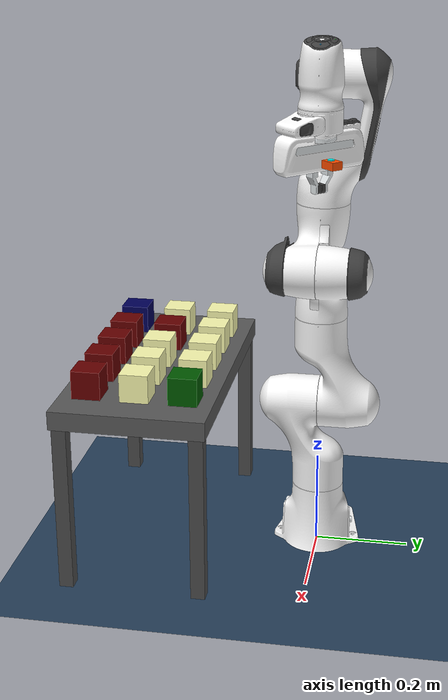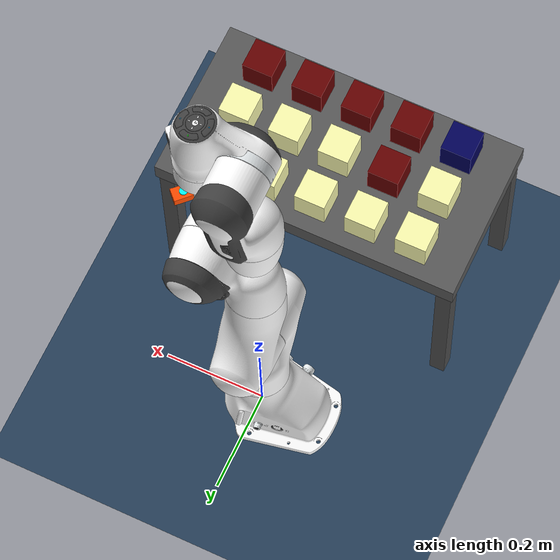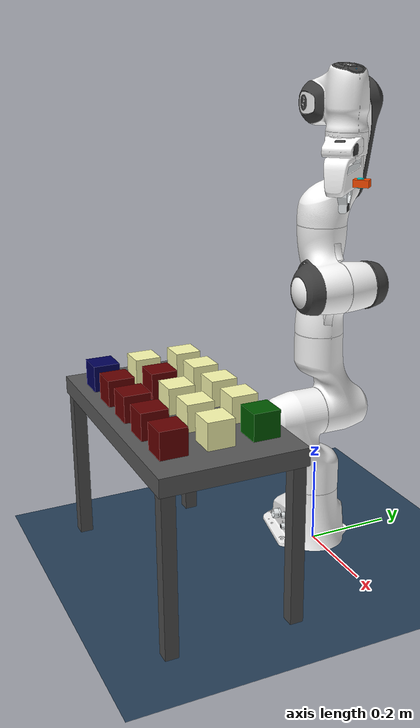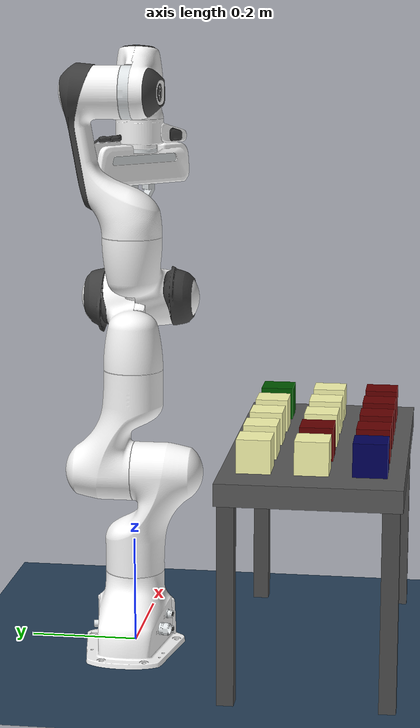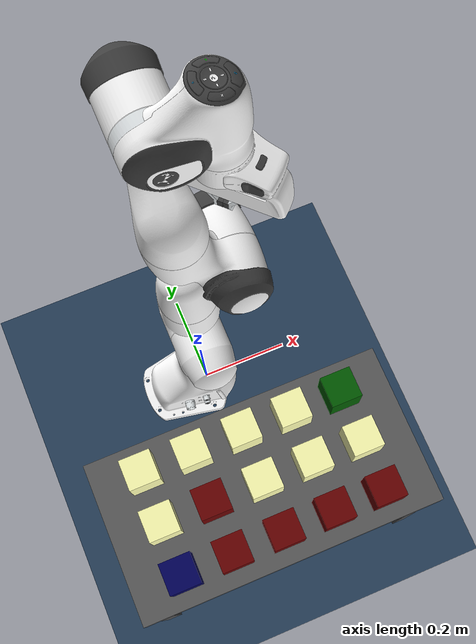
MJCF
<mujoco model="panda scene">

  <size nconmax="500" njmax="2000"/>
  <include file="panda.xml"/>

  <option timestep="1e-3"
    cone="elliptic"
    impratio="5"
    tolerance="1e-6"
    iterations="30"
    ls_iterations="10"
    noslip_tolerance="1e-6">
  </option>

  <statistic center="0.3 0 0.4" extent="1"/>

  <visual>
    <headlight diffuse="0.6 0.6 0.6" ambient="0.3 0.3 0.3" specular="0 0 0"/>
    <rgba haze="0.15 0.25 0.35 1"/>
    <global azimuth="120" elevation="-20"/>
  </visual>

  <option noslip_iterations="3">
    <flag multiccd="enable"  gravity="enable"/>
  </option>

  <asset>
    <texture type="skybox" builtin="gradient" rgb1="0.3 0.5 0.7" rgb2="0 0 0" width="512" height="3072"/>
    <texture type="2d" name="groundplane" builtin="checker" mark="edge" rgb1="0.2 0.3 0.4" rgb2="0.1 0.2 0.3"
      markrgb="0.8 0.8 0.8" width="300" height="300"/>
    <material name="groundplane" texture="groundplane" texuniform="true" texrepeat="5 5" reflectance="0.2"/>

  </asset>

  <worldbody>
    <light pos="0 0 1.5" dir="0 0 -1" directional="true"/>
    <geom name="floor" type="plane" size="0 0 0.05" material="groundplane"/>
    <camera name="front_cam" pos="-0.65 -1.3 1.0762"
            xyaxes="0.866 -0.5 0 0.211 0.366 0.906" fovy="45" mode="fixed"/>
    <camera name="topdown_cam" pos="0 -0.345 1.05"
            xyaxes="1 0 0 0 1 0" fovy="45" mode="fixed"/>

    <!-- First Row -->
      <body name="obstacle_soft1" pos="-0.2 -0.25 0.43" quat="0 0 0 1">
        <joint name="obstacle_soft1_joint" type="free"/>
        <geom name="obstacle_soft1_geom" type="box" size="0.03 0.03 0.03" rgba="1.0 1.0 0.698 1"/>
      </body>

      <body name="obstacle_soft2" pos="-0.1 -0.25 0.43" quat="0 0 0 1">
        <joint name="obstacle_soft2_joint" type="free"/>
        <geom name="obstacle_soft2_geom" type="box" size="0.03 0.03 0.03" rgba="1.0 1.0 0.698 1"/>
      </body>

      <body name="obstacle_soft3" pos="0.0 -0.25 0.43" quat="0 0 0 1">
        <joint name="obstacle_soft3_joint" type="free"/>
        <geom name="obstacle_soft3_geom" type="box" size="0.03 0.03 0.03" rgba="1.0 1.0 0.698 1"/>
      </body>

      <body name="obstacle_soft4" pos="0.1 -0.25 0.43" quat="0 0 0 1">
        <joint name="obstacle_soft4_joint" type="free"/>
        <geom name="obstacle_soft4_geom" type="box" size="0.03 0.03 0.03" rgba="1.0 1.0 0.698 1"/>
      </body>

      <body name="object3" pos="0.2 -0.25 0.43" quat="0 0 0 1">
        <joint name="object3_joint" type="free"/>
        <geom name="object3_geom" type="box" size="0.03 0.03 0.03" rgba="0.0 0.35 0.0 1" solimp="0.015 1 0.02" solref="0.005 1" condim="6" friction="2.8 1.2 0.1"/>
      </body>

    <!-- Second Row -->
      <body name="obstacle_soft5" pos="-0.2 -0.35 0.43" quat="0 0 0 1">
        <joint name="obstacle_soft5_joint" type="free"/>
        <geom name="obstacle_soft5_geom" type="box" size="0.03 0.03 0.03" rgba="1.0 1.0 0.698 1"/>
      </body>

      <body name="obstacle_hard6" pos="-0.1 -0.35 0.43" quat="0 0 0 1">
        <joint name="obstacle_hard6_joint" type="free"/>
        <geom name="obstacle_hard6_geom" type="box" size="0.03 0.03 0.03" rgba="0.4 0.0 0.0 1"/>
      </body>

      <body name="obstacle_soft7" pos="0.0 -0.35 0.43" quat="0 0 0 1">
        <joint name="obstacle_soft7_joint" type="free"/>
        <geom name="obstacle_soft7_geom" type="box" size="0.03 0.03 0.03" rgba="1.0 1.0 0.698 1"/>
      </body>

      <body name="obstacle_soft8" pos="0.1 -0.35 0.43" quat="0 0 0 1">
        <joint name="obstacle_soft8_joint" type="free"/>
        <geom name="obstacle_soft8_geom" type="box" size="0.03 0.03 0.03" rgba="1.0 1.0 0.698 1"/>
      </body>

      <body name="obstacle_soft9" pos="0.2 -0.35 0.43" quat="0 0 0 1">
        <joint name="obstacle_soft9_joint" type="free"/>
        <geom name="obstacle_soft9_geom" type="box" size="0.03 0.03 0.03" rgba="1.0 1.0 0.698 1"/>
      </body>

    <!-- Third Row -->
      <body name="object1" pos="-0.2 -0.45 0.43" quat="0 0 0 1">
        <joint name="object1_joint" type="free"/>
        <geom name="object1_geom" type="box" size="0.03 0.03 0.03" rgba="0.0 0.0 0.35 1"/>
      </body>

      <body name="obstacle_hard10" pos="-0.1 -0.45 0.43" quat="0 0 0 1">
        <joint name="obstacle_hard10_joint" type="free"/>
        <geom name="obstacle_hard10_geom" type="box" size="0.03 0.03 0.03" rgba="0.4 0.0 0.0 1"/>
      </body>

      <body name="obstacle_hard11" pos="0.0 -0.45 0.43" quat="0 0 0 1">
        <joint name="obstacle_hard11_joint" type="free"/>
        <geom name="obstacle_hard11_geom" type="box" size="0.03 0.03 0.03" rgba="0.4 0.0 0.0 1"/>
      </body>

      <body name="obstacle_hard12" pos="0.1 -0.45 0.43" quat="0 0 0 1">
        <joint name="obstacle_hard12_joint" type="free"/>
        <geom name="obstacle_hard12_geom" type="box" size="0.03 0.03 0.03" rgba="0.4 0.0 0.0 1"/>
      </body>

      <body name="obstacle_hard13" pos="0.2 -0.45 0.43" quat="0 0 0 1">
        <joint name="obstacle_hard13_joint" type="free"/>
        <geom name="obstacle_hard13_geom" type="box" size="0.03 0.03 0.03" rgba="0.4 0.0 0.0 1"/>
      </body>

    <!-- simple table, now really on the ground -->
    <body name="simple_table" pos="0 -0.35 0" quat="0 0 0 1">
      <joint name="table_joint" type="free"/>

      <!-- tabletop -->
      <geom type="box" size="0.30 0.16 0.02" pos="0 0 0.38"
            rgba="0.35 0.35 0.35 1"/>

      <!-- legs -->
      <geom type="box" size="0.015 0.015 0.18" pos=" 0.28  0.14 0.18"
            rgba="0.3 0.3 0.3 1"/>
      <geom type="box" size="0.015 0.015 0.18" pos="-0.28  0.14 0.18"
            rgba="0.3 0.3 0.3 1"/>
      <geom type="box" size="0.015 0.015 0.18" pos=" 0.28 -0.14 0.18"
            rgba="0.3 0.3 0.3 1"/>
      <geom type="box" size="0.015 0.015 0.18" pos="-0.28 -0.14 0.18"
            rgba="0.3 0.3 0.3 1"/>

    </body>

  </worldbody>
</mujoco>

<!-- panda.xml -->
<mujoco model="panda">
  <size njmax="100"/>
  <compiler angle="radian" meshdir="assets" autolimits="true"/>

  <option integrator="implicitfast"/>

  <default>
    <default class="panda">
      <material specular="0.5" shininess="0.25"/>
      <joint armature="0.1" damping="1" axis="0 0 1" range="-2.8973 2.8973"/>
      <general dyntype="none" biastype="affine" ctrlrange="-2.8973 2.8973" forcerange="-87 87"/>
      <default class="finger">
        <joint axis="0 1 0" type="slide" range="0 0.04"/>
      </default>

      <default class="visual">
        <geom type="mesh" contype="0" conaffinity="0" group="2"/>
      </default>
      <default class="collision">
        <geom type="mesh" group="3"/>
        <default class="fingertip_pad_collision_1">
          <geom type="box" size="0.0085 0.004 0.0085" pos="0 0.0055 0.0445"/>
        </default>
        <default class="fingertip_pad_collision_2">
          <geom type="box" size="0.003 0.002 0.003" pos="0.0055 0.002 0.05"/>
        </default>
        <default class="fingertip_pad_collision_3">
          <geom type="box" size="0.003 0.002 0.003" pos="-0.0055 0.002 0.05"/>
        </default>
        <default class="fingertip_pad_collision_4">
          <geom type="box" size="0.003 0.002 0.0035" pos="0.0055 0.002 0.0395"/>
        </default>
        <default class="fingertip_pad_collision_5">
          <geom type="box" size="0.003 0.002 0.0035" pos="-0.0055 0.002 0.0395"/>
        </default>
      </default>
    </default>
  </default>

  <asset>
    <material class="panda" name="white" rgba="1 1 1 1"/>
    <material class="panda" name="off_white" rgba="0.901961 0.921569 0.929412 1"/>
    <material class="panda" name="black" rgba="0.25 0.25 0.25 1"/>
    <material class="panda" name="green" rgba="0 1 0 1"/>
    <material class="panda" name="light_blue" rgba="0.039216 0.541176 0.780392 1"/>

    <!-- Collision meshes -->
    <mesh name="link0_c" file="link0.stl"/>
    <mesh name="link1_c" file="link1.stl"/>
    <mesh name="link2_c" file="link2.stl"/>
    <mesh name="link3_c" file="link3.stl"/>
    <mesh name="link4_c" file="link4.stl"/>
    <mesh name="link5_c0" file="link5_collision_0.obj"/>
    <mesh name="link5_c1" file="link5_collision_1.obj"/>
    <mesh name="link5_c2" file="link5_collision_2.obj"/>
    <mesh name="link6_c" file="link6.stl"/>
    <mesh name="link7_c" file="link7.stl"/>
    <mesh name="hand_c" file="hand.stl"/>

    <!-- Visual meshes -->
    <mesh file="link0_0.obj"/>
    <mesh file="link0_1.obj"/>
    <mesh file="link0_2.obj"/>
    <mesh file="link0_3.obj"/>
    <mesh file="link0_4.obj"/>
    <mesh file="link0_5.obj"/>
    <mesh file="link0_7.obj"/>
    <mesh file="link0_8.obj"/>
    <mesh file="link0_9.obj"/>
    <mesh file="link0_10.obj"/>
    <mesh file="link0_11.obj"/>
    <mesh file="link1.obj"/>
    <mesh file="link2.obj"/>
    <mesh file="link3_0.obj"/>
    <mesh file="link3_1.obj"/>
    <mesh file="link3_2.obj"/>
    <mesh file="link3_3.obj"/>
    <mesh file="link4_0.obj"/>
    <mesh file="link4_1.obj"/>
    <mesh file="link4_2.obj"/>
    <mesh file="link4_3.obj"/>
    <mesh file="link5_0.obj"/>
    <mesh file="link5_1.obj"/>
    <mesh file="link5_2.obj"/>
    <mesh file="link6_0.obj"/>
    <mesh file="link6_1.obj"/>
    <mesh file="link6_2.obj"/>
    <mesh file="link6_3.obj"/>
    <mesh file="link6_4.obj"/>
    <mesh file="link6_5.obj"/>
    <mesh file="link6_6.obj"/>
    <mesh file="link6_7.obj"/>
    <mesh file="link6_8.obj"/>
    <mesh file="link6_9.obj"/>
    <mesh file="link6_10.obj"/>
    <mesh file="link6_11.obj"/>
    <mesh file="link6_12.obj"/>
    <mesh file="link6_13.obj"/>
    <mesh file="link6_14.obj"/>
    <mesh file="link6_15.obj"/>
    <mesh file="link6_16.obj"/>
    <mesh file="link7_0.obj"/>
    <mesh file="link7_1.obj"/>
    <mesh file="link7_2.obj"/>
    <mesh file="link7_3.obj"/>
    <mesh file="link7_4.obj"/>
    <mesh file="link7_5.obj"/>
    <mesh file="link7_6.obj"/>
    <mesh file="link7_7.obj"/>
    <mesh file="hand_0.obj"/>
    <mesh file="hand_1.obj"/>
    <mesh file="hand_2.obj"/>
    <mesh file="hand_3.obj"/>
    <mesh file="hand_4.obj"/>
    <mesh file="finger_0.obj"/>
    <mesh file="finger_1.obj"/>
  </asset>

  <worldbody>
    <light name="top" pos="0 0 2" mode="trackcom"/>
    <body name="link0" childclass="panda">
      <inertial mass="0.629769" pos="-0.041018 -0.00014 0.049974"
        fullinertia="0.00315 0.00388 0.004285 8.2904e-7 0.00015 8.2299e-6"/>
      <geom mesh="link0_0" material="off_white" class="visual"/>
      <geom mesh="link0_1" material="black" class="visual"/>
      <geom mesh="link0_2" material="off_white" class="visual"/>
      <geom mesh="link0_3" material="black" class="visual"/>
      <geom mesh="link0_4" material="off_white" class="visual"/>
      <geom mesh="link0_5" material="black" class="visual"/>
      <geom mesh="link0_7" material="white" class="visual"/>
      <geom mesh="link0_8" material="white" class="visual"/>
      <geom mesh="link0_9" material="black" class="visual"/>
      <geom mesh="link0_10" material="off_white" class="visual"/>
      <geom mesh="link0_11" material="white" class="visual"/>
      <geom mesh="link0_c" class="collision"/>
      <body name="link1" pos="0 0 0.333">
        <inertial mass="4.970684" pos="0.003875 0.002081 -0.04762"
          fullinertia="0.70337 0.70661 0.0091170 -0.00013900 0.0067720 0.019169"/>
        <joint name="joint1"/>
        <geom material="white" mesh="link1" class="visual"/>
        <geom mesh="link1_c" class="collision"/>
        <body name="link2" quat="1 -1 0 0">
          <inertial mass="0.646926" pos="-0.003141 -0.02872 0.003495"
            fullinertia="0.0079620 2.8110e-2 2.5995e-2 -3.925e-3 1.0254e-2 7.04e-4"/>
          <joint name="joint2" range="-1.7628 1.7628"/>
          <geom material="white" mesh="link2" class="visual"/>
          <geom mesh="link2_c" class="collision"/>
          <body name="link3" pos="0 -0.316 0" quat="1 1 0 0">
            <joint name="joint3"/>
            <inertial mass="3.228604" pos="2.7518e-2 3.9252e-2 -6.6502e-2"
              fullinertia="3.7242e-2 3.6155e-2 1.083e-2 -4.761e-3 -1.1396e-2 -1.2805e-2"/>
            <geom mesh="link3_0" material="white" class="visual"/>
            <geom mesh="link3_1" material="white" class="visual"/>
            <geom mesh="link3_2" material="white" class="visual"/>
            <geom mesh="link3_3" material="black" class="visual"/>
            <geom mesh="link3_c" class="collision"/>
            <body name="link4" pos="0.0825 0 0" quat="1 1 0 0">
              <inertial mass="3.587895" pos="-5.317e-2 1.04419e-1 2.7454e-2"
                fullinertia="2.5853e-2 1.9552e-2 2.8323e-2 7.796e-3 -1.332e-3 8.641e-3"/>
              <joint name="joint4" range="-3.0718 -0.0698"/>
              <geom mesh="link4_0" material="white" class="visual"/>
              <geom mesh="link4_1" material="white" class="visual"/>
              <geom mesh="link4_2" material="black" class="visual"/>
              <geom mesh="link4_3" material="white" class="visual"/>
              <geom mesh="link4_c" class="collision"/>
              <body name="link5" pos="-0.0825 0.384 0" quat="1 -1 0 0">
                <inertial mass="1.225946" pos="-1.1953e-2 4.1065e-2 -3.8437e-2"
                  fullinertia="3.5549e-2 2.9474e-2 8.627e-3 -2.117e-3 -4.037e-3 2.29e-4"/>
                <joint name="joint5"/>
                <geom mesh="link5_0" material="black" class="visual"/>
                <geom mesh="link5_1" material="white" class="visual"/>
                <geom mesh="link5_2" material="white" class="visual"/>
                <geom mesh="link5_c0" class="collision"/>
                <geom mesh="link5_c1" class="collision"/>
                <geom mesh="link5_c2" class="collision"/>
                <body name="link6" quat="1 1 0 0">
                  <inertial mass="1.666555" pos="6.0149e-2 -1.4117e-2 -1.0517e-2"
                    fullinertia="1.964e-3 4.354e-3 5.433e-3 1.09e-4 -1.158e-3 3.41e-4"/>
                  <joint name="joint6" range="-0.0175 3.7525"/>
                  <geom mesh="link6_0" material="off_white" class="visual"/>
                  <geom mesh="link6_1" material="white" class="visual"/>
                  <geom mesh="link6_2" material="black" class="visual"/>
                  <geom mesh="link6_3" material="white" class="visual"/>
                  <geom mesh="link6_4" material="white" class="visual"/>
                  <geom mesh="link6_5" material="white" class="visual"/>
                  <geom mesh="link6_6" material="white" class="visual"/>
                  <geom mesh="link6_7" material="light_blue" class="visual"/>
                  <geom mesh="link6_8" material="light_blue" class="visual"/>
                  <geom mesh="link6_9" material="black" class="visual"/>
                  <geom mesh="link6_10" material="black" class="visual"/>
                  <geom mesh="link6_11" material="white" class="visual"/>
                  <geom mesh="link6_12" material="green" class="visual"/>
                  <geom mesh="link6_13" material="white" class="visual"/>
                  <geom mesh="link6_14" material="black" class="visual"/>
                  <geom mesh="link6_15" material="black" class="visual"/>
                  <geom mesh="link6_16" material="white" class="visual"/>
                  <geom mesh="link6_c" class="collision"/>
                  <body name="link7" pos="0.088 0 0" quat="1 1 0 0">
                    <inertial mass="7.35522e-01" pos="1.0517e-2 -4.252e-3 6.1597e-2"
                      fullinertia="1.2516e-2 1.0027e-2 4.815e-3 -4.28e-4 -1.196e-3 -7.41e-4"/>
                    <joint name="joint7"/>
                    <geom mesh="link7_0" material="white" class="visual"/>
                    <geom mesh="link7_1" material="black" class="visual"/>
                    <geom mesh="link7_2" material="black" class="visual"/>
                    <geom mesh="link7_3" material="black" class="visual"/>
                    <geom mesh="link7_4" material="black" class="visual"/>
                    <geom mesh="link7_5" material="black" class="visual"/>
                    <geom mesh="link7_6" material="black" class="visual"/>
                    <geom mesh="link7_7" material="white" class="visual"/>
                    <geom mesh="link7_c" class="collision"/>
                    <!-- Wrist camera: mounted on link7, looks past hand toward workspace -->
                    <body name="hand" pos="0 0 0.107" quat="0.9238795 0 0 -0.3826834">
                      <inertial mass="0.73" pos="-0.01 0 0.03" diaginertia="0.001 0.0025 0.0017"/>
                      <geom mesh="hand_0" material="off_white" class="visual"/>
                      <geom mesh="hand_1" material="black" class="visual"/>
                      <geom mesh="hand_2" material="black" class="visual"/>
                      <geom mesh="hand_3" material="white" class="visual"/>
                      <geom mesh="hand_4" material="off_white" class="visual"/>
                      <geom mesh="hand_c" class="collision"/>

                      <!-- Wrist camera: near fingertip level, outside mesh, looks along gripper approach (+Z) -->

                      <camera name="ee_cam" pos="0.0318 -0.0025 0.05" xyaxes="0 1 0 1 0 0" fovy="90"/>
                      <geom name="ee_cam_body" type="box" size="0.020 0.012 0.008"
                            pos="0.0318 -0.0025 0.05" rgba="1 0.3 0 1" class="visual"/>
                      <geom name="ee_cam_lens" type="cylinder" size="0.007 0.010"
                            pos="0.0318 -0.0025 0.05" xyaxes="0 1 0 1 0 0" rgba="0 1 1 1" class="visual"/>

                      <!-- ADD THIS SITE HERE -->
                      <site name="end_effector"
                            pos="0 0 0.1"
                            size="0.01"
                            rgba="1 0 0 0"
                            type="sphere"/>

                      <body name="left_finger" pos="0 0 0.0584">
                        <inertial mass="0.015" pos="0 0 0" diaginertia="2.375e-6 2.375e-6 7.5e-7"/>
                        <joint name="finger_joint1" class="finger"/>
                        <geom mesh="finger_0" material="off_white" class="visual"/>
                        <geom mesh="finger_1" material="black" class="visual"/>
                        <geom mesh="finger_0" class="collision"/>
                        <geom class="fingertip_pad_collision_1"/>
                        <geom class="fingertip_pad_collision_2"/>
                        <geom class="fingertip_pad_collision_3"/>
                        <geom class="fingertip_pad_collision_4"/>
                        <geom class="fingertip_pad_collision_5"/>
                      </body>
                      <body name="right_finger" pos="0 0 0.0584" quat="0 0 0 1">
                        <inertial mass="0.015" pos="0 0 0" diaginertia="2.375e-6 2.375e-6 7.5e-7"/>
                        <joint name="finger_joint2" class="finger"/>
                        <geom mesh="finger_0" material="off_white" class="visual"/>
                        <geom mesh="finger_1" material="black" class="visual"/>
                        <geom mesh="finger_0" class="collision"/>
                        <geom class="fingertip_pad_collision_1"/>
                        <geom class="fingertip_pad_collision_2"/>
                        <geom class="fingertip_pad_collision_3"/>
                        <geom class="fingertip_pad_collision_4"/>
                        <geom class="fingertip_pad_collision_5"/>
                      </body>
                    </body>
                  </body>
                </body>
              </body>
            </body>
          </body>
        </body>
      </body>
    </body>
  </worldbody>

  <tendon>
    <fixed name="split">
      <joint joint="finger_joint1" coef="0.5"/>
      <joint joint="finger_joint2" coef="0.5"/>
    </fixed>
  </tendon>

  <equality>
    <joint joint1="finger_joint1" joint2="finger_joint2" solimp="0.95 0.99 0.001" solref="0.005 1"/>
  </equality>

  <actuator>
    <general class="panda" name="actuator1" joint="joint1" gainprm="4500" biasprm="0 -4500 -450"/>
    <general class="panda" name="actuator2" joint="joint2" gainprm="4500" biasprm="0 -4500 -450"
      ctrlrange="-1.7628 1.7628"/>
    <general class="panda" name="actuator3" joint="joint3" gainprm="3500" biasprm="0 -3500 -350"/>
    <general class="panda" name="actuator4" joint="joint4" gainprm="3500" biasprm="0 -3500 -350"
      ctrlrange="-3.0718 -0.0698"/>
    <general class="panda" name="actuator5" joint="joint5" gainprm="2000" biasprm="0 -2000 -200" forcerange="-12 12"/>
    <general class="panda" name="actuator6" joint="joint6" gainprm="2000" biasprm="0 -2000 -200" forcerange="-12 12"
      ctrlrange="-0.0175 3.7525"/>
    <general class="panda" name="actuator7" joint="joint7" gainprm="2000" biasprm="0 -2000 -200" forcerange="-12 12"/>
    <!-- Remap original ctrlrange (0, 0.04) to (0, 255): 0.04 * 100 / 255 = 0.01568627451 -->
    <general class="panda" name="actuator8" tendon="split" forcerange="-500 500" ctrlrange="0 255"
      gainprm="0.01568627451 0 0" biasprm="0 -100 -10"/>
  </actuator>

</mujoco>
